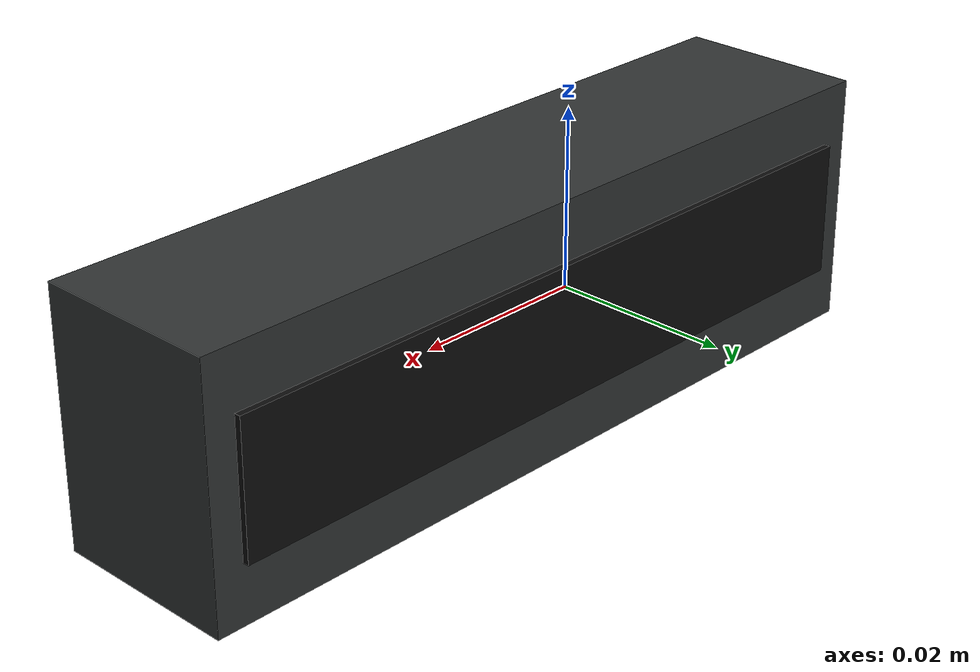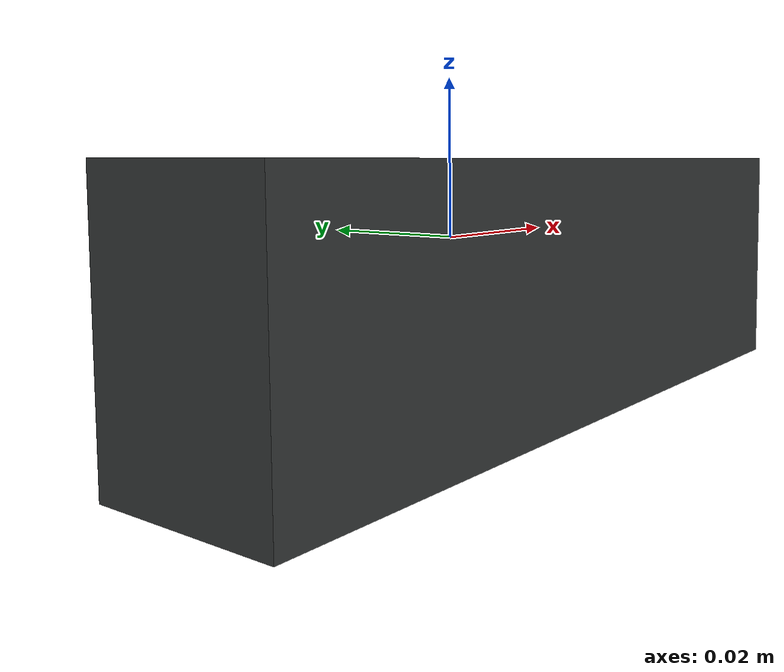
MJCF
<mujoco model="oakd">
  <compiler angle="radian" autolimits="true"/>

  <asset>
    <!-- The source DAE's own phong diffuse (0.19216 0.2039 0.2039): the device's dark grey shell. -->
    <material name="oakd_body" rgba="0.192 0.204 0.204 1" specular="0.4" shininess="0.3"/>
    <material name="oakd_glass" rgba="0.05 0.05 0.05 1" specular="0.6" shininess="0.6"/>
  </asset>

  <worldbody>
    <!-- quat reorients the mount so the lens looks along +y at rpy [0,0,0] (see header). -->
    <body name="mount" quat="0.70710678 0 0 0.70710678">
      <geom name="oakd_visual" type="box" pos="-0.011 0 -0.005" size="0.01125 0.0485 0.015"
            material="oakd_body"/>
      <!-- Front glass strip, laid just proud of the box's front face (x = 0.0004) so the lens face is
           tellable from the back at a glance -- a plain box has no other orientation cue. -->
      <geom name="oakd_front" type="box" pos="0.0006 0 -0.005" size="0.0004 0.045 0.008"
            material="oakd_glass" contype="0" conaffinity="0"/>
      <camera name="oakd_rgb" pos="0 0 0" xyaxes="0 -1 0 0 0 1"
              fovy="56.84" resolution="320 240"/>
      <!-- Stereo-pair frames at the xacro's 0.075 m baseline (left +y, right -y), for a TF / stereo
           bridge; not consumed by the physics. Mirrors the sites turtlebot4.xml defines. -->
      <site name="oakd"       pos="0 0       0" size="0.005" rgba="0 0 0 0"/>
      <site name="oakd_left"  pos="0 0.0375  0" size="0.005" rgba="0 0 0 0"/>
      <site name="oakd_right" pos="0 -0.0375 0" size="0.005" rgba="0 0 0 0"/>
    </body>
  </worldbody>
</mujoco>
